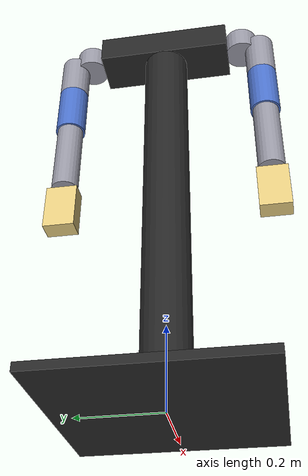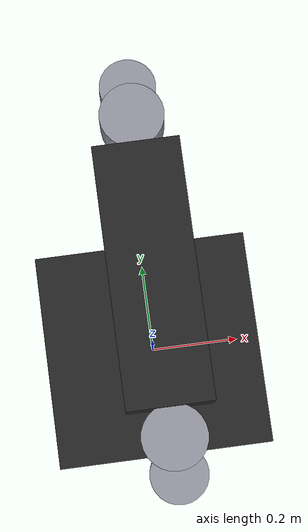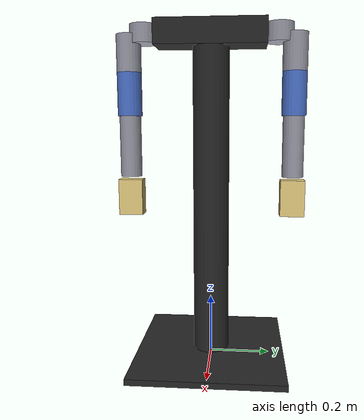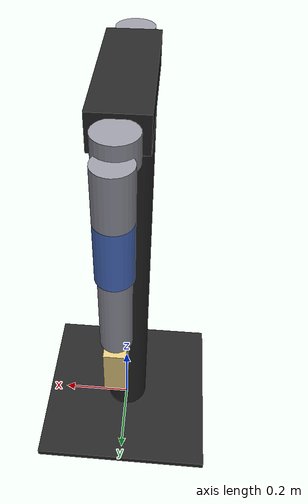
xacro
<?xml version="1.0"?>
<robot name="sh_gen2">
  <material name="grey"><color rgba="0.6 0.6 0.65 1"/></material>
  <material name="dark"><color rgba="0.15 0.15 0.15 1"/></material>
  <material name="blue"><color rgba="0.3 0.45 0.8 1"/></material>
  <material name="skin"><color rgba="0.9 0.8 0.5 1"/></material>

  <link name="base_link">
    <visual>
      <origin xyz="0 0 0.01" rpy="0 0 0"/>
      <geometry><box size="0.5 0.5 0.02"/></geometry>
      <material name="dark"/>
    </visual>
    <collision>
      <origin xyz="0 0 0.01" rpy="0 0 0"/>
      <geometry><box size="0.5 0.5 0.02"/></geometry>
    </collision>
    <visual>
      <origin xyz="0 0 0.53" rpy="0 0 0"/>
      <geometry><cylinder radius="0.06" length="1.02"/></geometry>
      <material name="dark"/>
    </visual>
    <collision>
      <origin xyz="0 0 0.53" rpy="0 0 0"/>
      <geometry><cylinder radius="0.06" length="1.02"/></geometry>
    </collision>
    <visual>
      <origin xyz="0 0 1.08" rpy="0 0 0"/>
      <geometry><box size="0.12 0.36 0.08"/></geometry>
      <material name="dark"/>
    </visual>
    <collision>
      <origin xyz="0 0 1.08" rpy="0 0 0"/>
      <geometry><box size="0.12 0.36 0.08"/></geometry>
    </collision>
  </link>

  <!-- ===== left arm ===== -->
  <joint name="left_shoulder_pitch_joint" type="revolute">
    <parent link="base_link"/>
    <child link="left_shoulder_pitch_link"/>
    <origin xyz="0 0.22 1.08" rpy="0 0 0"/>
    <axis xyz="0 1 0"/>
    <limit lower="-2.5" upper="2.5" velocity="2.0" effort="50.0"/>
  </joint>
  <link name="left_shoulder_pitch_link">
    <visual>
      <origin xyz="0 0 0" rpy="0 0 0"/>
      <geometry><cylinder radius="0.045" length="0.06"/></geometry>
      <material name="grey"/>
    </visual>
    <collision>
      <origin xyz="0 0 0" rpy="0 0 0"/>
      <geometry><cylinder radius="0.045" length="0.06"/></geometry>
    </collision>
  </link>
  <joint name="left_shoulder_roll_joint" type="revolute">
    <parent link="left_shoulder_pitch_link"/>
    <child link="left_shoulder_roll_link"/>
    <origin xyz="0 0.05 0" rpy="0 0 0"/>
    <axis xyz="1 0 0"/>
    <limit lower="-0.3" upper="2.2" velocity="2.0" effort="50.0"/>
  </joint>
  <link name="left_shoulder_roll_link">
    <visual>
      <origin xyz="0 0 -0.06" rpy="0 0 0"/>
      <geometry><cylinder radius="0.04" length="0.12"/></geometry>
      <material name="grey"/>
    </visual>
    <collision>
      <origin xyz="0 0 -0.06" rpy="0 0 0"/>
      <geometry><cylinder radius="0.04" length="0.12"/></geometry>
    </collision>
  </link>
  <joint name="left_shoulder_yaw_joint" type="revolute">
    <parent link="left_shoulder_roll_link"/>
    <child link="left_shoulder_yaw_link"/>
    <origin xyz="0 0 -0.12" rpy="0 0 0"/>
    <axis xyz="0 0 1"/>
    <limit lower="-2.0" upper="2.0" velocity="2.0" effort="50.0"/>
  </joint>
  <link name="left_shoulder_yaw_link">
    <visual>
      <origin xyz="0 0 -0.07" rpy="0 0 0"/>
      <geometry><cylinder radius="0.04" length="0.14"/></geometry>
      <material name="blue"/>
    </visual>
    <collision>
      <origin xyz="0 0 -0.07" rpy="0 0 0"/>
      <geometry><cylinder radius="0.04" length="0.14"/></geometry>
    </collision>
  </link>
  <joint name="left_elbow_joint" type="revolute">
    <parent link="left_shoulder_yaw_link"/>
    <child link="left_elbow_link"/>
    <origin xyz="0 0 -0.14" rpy="0 0 0"/>
    <axis xyz="0 1 0"/>
    <limit lower="-2.3" upper="0.0" velocity="2.0" effort="50.0"/>
  </joint>
  <link name="left_elbow_link">
    <visual>
      <origin xyz="0 0 -0.1" rpy="0 0 0"/>
      <geometry><cylinder radius="0.035" length="0.2"/></geometry>
      <material name="grey"/>
    </visual>
    <collision>
      <origin xyz="0 0 -0.1" rpy="0 0 0"/>
      <geometry><cylinder radius="0.035" length="0.2"/></geometry>
    </collision>
  </link>
  <joint name="left_wrist_joint" type="revolute">
    <parent link="left_elbow_link"/>
    <child link="left_wrist_link"/>
    <origin xyz="0 0 -0.2" rpy="0 0 0"/>
    <axis xyz="0 0 1"/>
    <limit lower="-1.8" upper="1.8" velocity="2.0" effort="50.0"/>
  </joint>
  <link name="left_wrist_link">
    <visual>
      <origin xyz="0 0 -0.07" rpy="0 0 0"/>
      <geometry><box size="0.05 0.08 0.12"/></geometry>
      <material name="skin"/>
    </visual>
    <collision>
      <origin xyz="0 0 -0.07" rpy="0 0 0"/>
      <geometry><box size="0.05 0.08 0.12"/></geometry>
    </collision>
  </link>

  <!-- ===== right arm ===== -->
  <joint name="right_shoulder_pitch_joint" type="revolute">
    <parent link="base_link"/>
    <child link="right_shoulder_pitch_link"/>
    <origin xyz="0 -0.22 1.08" rpy="0 0 0"/>
    <axis xyz="0 1 0"/>
    <limit lower="-2.5" upper="2.5" velocity="2.0" effort="50.0"/>
  </joint>
  <link name="right_shoulder_pitch_link">
    <visual>
      <origin xyz="0 0 0" rpy="0 0 0"/>
      <geometry><cylinder radius="0.045" length="0.06"/></geometry>
      <material name="grey"/>
    </visual>
    <collision>
      <origin xyz="0 0 0" rpy="0 0 0"/>
      <geometry><cylinder radius="0.045" length="0.06"/></geometry>
    </collision>
  </link>
  <joint name="right_shoulder_roll_joint" type="revolute">
    <parent link="right_shoulder_pitch_link"/>
    <child link="right_shoulder_roll_link"/>
    <origin xyz="0 -0.05 0" rpy="0 0 0"/>
    <axis xyz="1 0 0"/>
    <limit lower="-2.2" upper="0.3" velocity="2.0" effort="50.0"/>
  </joint>
  <link name="right_shoulder_roll_link">
    <visual>
      <origin xyz="0 0 -0.06" rpy="0 0 0"/>
      <geometry><cylinder radius="0.04" length="0.12"/></geometry>
      <material name="grey"/>
    </visual>
    <collision>
      <origin xyz="0 0 -0.06" rpy="0 0 0"/>
      <geometry><cylinder radius="0.04" length="0.12"/></geometry>
    </collision>
  </link>
  <joint name="right_shoulder_yaw_joint" type="revolute">
    <parent link="right_shoulder_roll_link"/>
    <child link="right_shoulder_yaw_link"/>
    <origin xyz="0 0 -0.12" rpy="0 0 0"/>
    <axis xyz="0 0 1"/>
    <limit lower="-2.0" upper="2.0" velocity="2.0" effort="50.0"/>
  </joint>
  <link name="right_shoulder_yaw_link">
    <visual>
      <origin xyz="0 0 -0.07" rpy="0 0 0"/>
      <geometry><cylinder radius="0.04" length="0.14"/></geometry>
      <material name="blue"/>
    </visual>
    <collision>
      <origin xyz="0 0 -0.07" rpy="0 0 0"/>
      <geometry><cylinder radius="0.04" length="0.14"/></geometry>
    </collision>
  </link>
  <joint name="right_elbow_joint" type="revolute">
    <parent link="right_shoulder_yaw_link"/>
    <child link="right_elbow_link"/>
    <origin xyz="0 0 -0.14" rpy="0 0 0"/>
    <axis xyz="0 1 0"/>
    <limit lower="-2.3" upper="0.0" velocity="2.0" effort="50.0"/>
  </joint>
  <link name="right_elbow_link">
    <visual>
      <origin xyz="0 0 -0.1" rpy="0 0 0"/>
      <geometry><cylinder radius="0.035" length="0.2"/></geometry>
      <material name="grey"/>
    </visual>
    <collision>
      <origin xyz="0 0 -0.1" rpy="0 0 0"/>
      <geometry><cylinder radius="0.035" length="0.2"/></geometry>
    </collision>
  </link>
  <joint name="right_wrist_joint" type="revolute">
    <parent link="right_elbow_link"/>
    <child link="right_wrist_link"/>
    <origin xyz="0 0 -0.2" rpy="0 0 0"/>
    <axis xyz="0 0 1"/>
    <limit lower="-1.8" upper="1.8" velocity="2.0" effort="50.0"/>
  </joint>
  <link name="right_wrist_link">
    <visual>
      <origin xyz="0 0 -0.07" rpy="0 0 0"/>
      <geometry><box size="0.05 0.08 0.12"/></geometry>
      <material name="skin"/>
    </visual>
    <collision>
      <origin xyz="0 0 -0.07" rpy="0 0 0"/>
      <geometry><box size="0.05 0.08 0.12"/></geometry>
    </collision>
  </link>
</robot>
